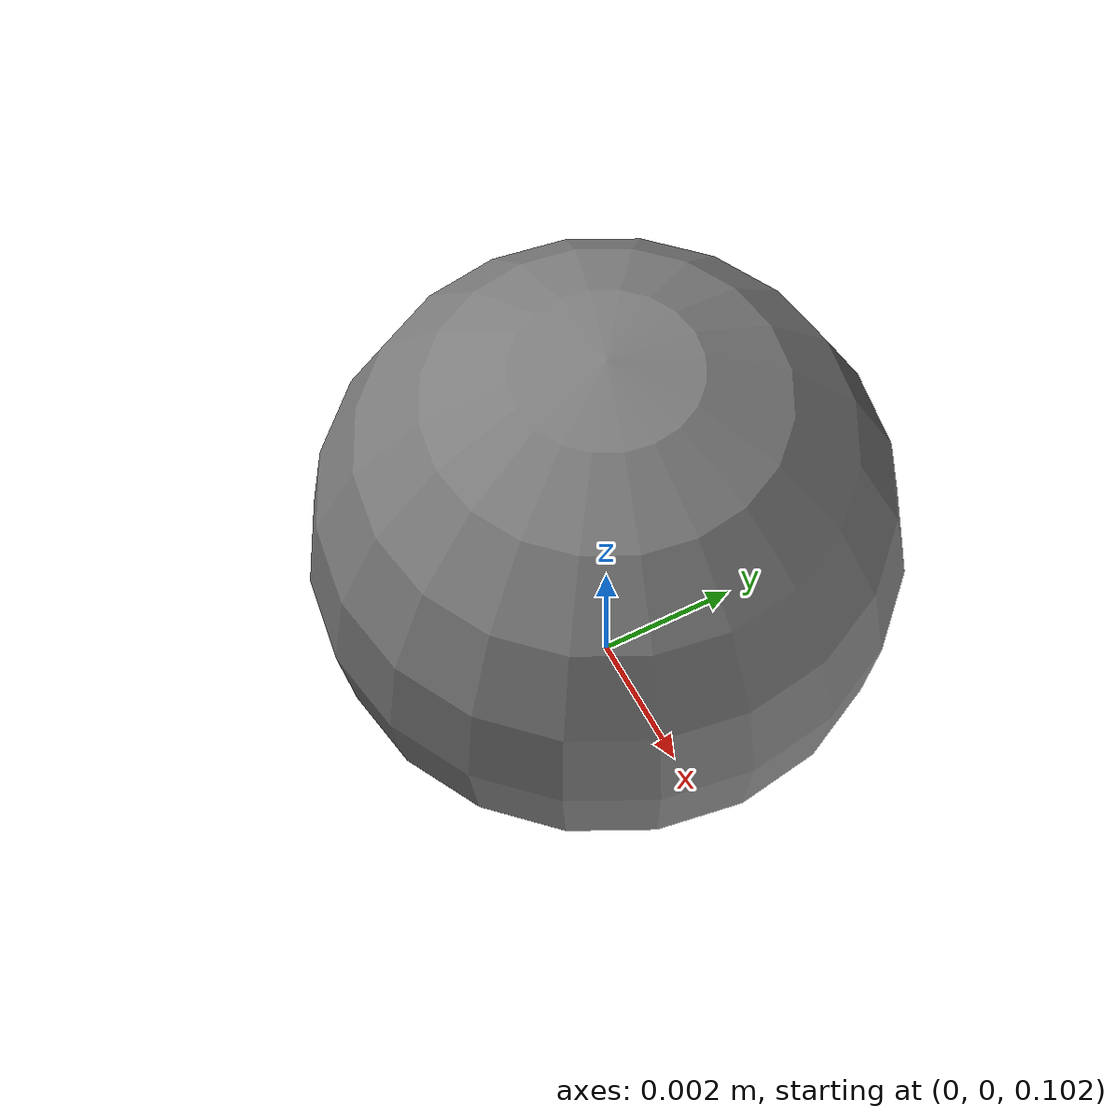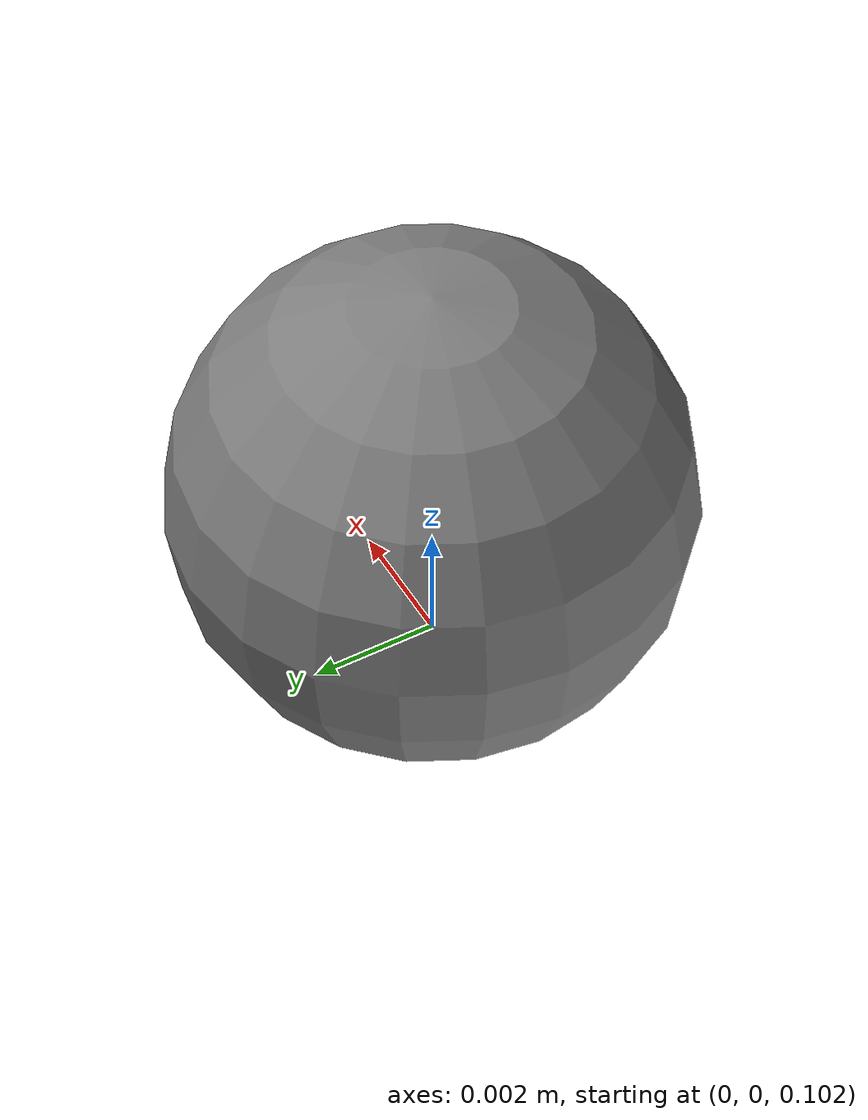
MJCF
<mujoco>
  <option gravity="2.0 0 -9.81" timestep="0.001"/>
  <worldbody>
    <body name="arm" pos="0 0 0.2">
      <joint name="j" type="hinge" axis="0 1 0"/>
      <geom type="sphere" pos="0 0 -0.095" size="0.004" mass="0.2"/>
    </body>
  </worldbody>
  <actuator>
    <motor joint="j" gear="1"/>
  </actuator>
</mujoco>
